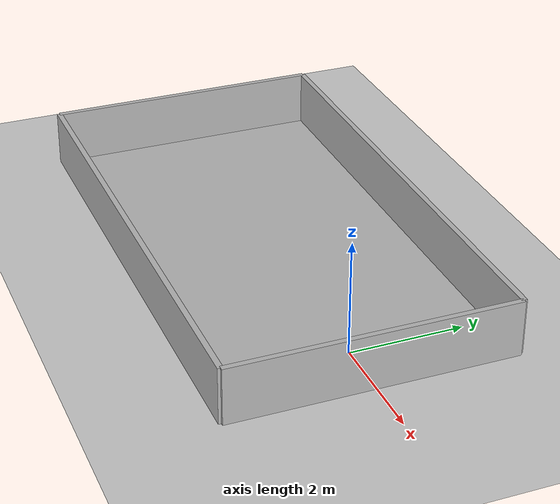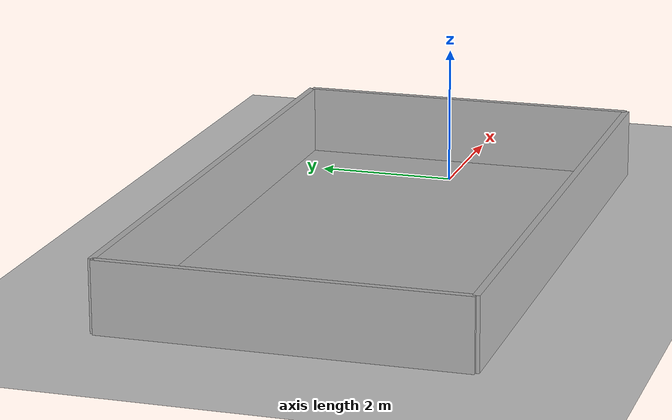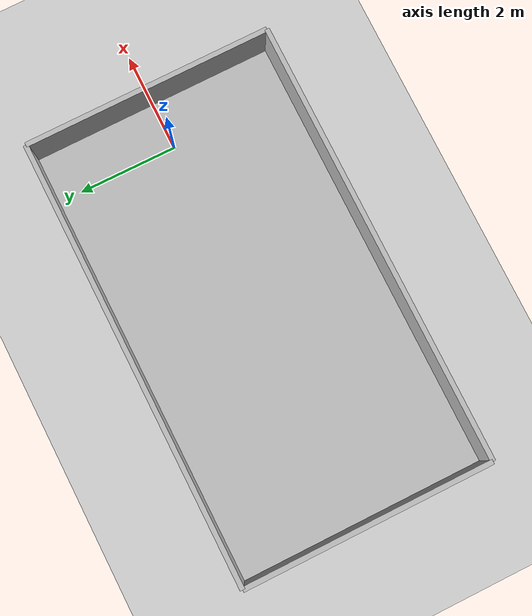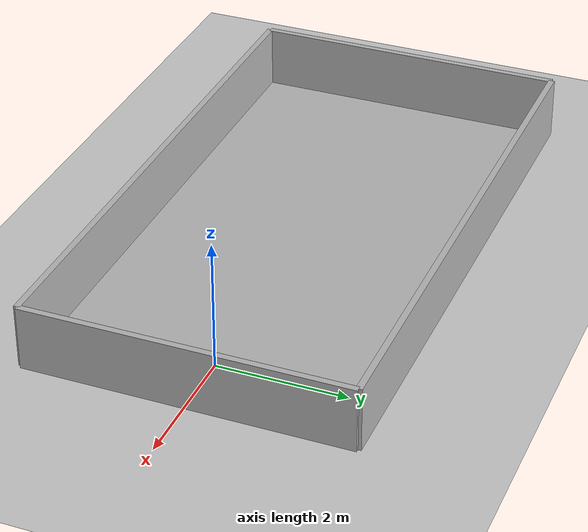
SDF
<?xml version="1.0"?>
<sdf version="1.6">
  <world name="rectangle_world">
    <include>
      <uri>model://sun</uri>
    </include>

    <include>
      <uri>model://ground_plane</uri>
    </include>

    <gui fullscreen='0'>
      <camera name='user_camera'>
        <pose frame=''>0 0 10 0 1.57 0</pose>
        <view_controller>orbit</view_controller>
        <projection_type>perspective</projection_type>
      </camera>
    </gui>

    <physics type="ode">
      <real_time_update_rate>1000.0</real_time_update_rate>
      <max_step_size>0.001</max_step_size>
      <real_time_factor>1</real_time_factor>
      <ode>
        <solver>
          <type>quick</type>
          <iters>150</iters>
          <precon_iters>0</precon_iters>
          <sor>1.400000</sor>
          <use_dynamic_moi_rescaling>1</use_dynamic_moi_rescaling>
        </solver>
        <constraints>
          <cfm>0.00001</cfm>
          <erp>0.2</erp>
          <contact_max_correcting_vel>2000.000000</contact_max_correcting_vel>
          <contact_surface_layer>0.01000</contact_surface_layer>
        </constraints>
      </ode>
    </physics>

    <!-- 5m x 9m 바닥 -->
    <model name="floor">
      <static>true</static>
      <link name="link">
        <collision name="collision">
          <geometry>
            <box>
              <size>9 5 0.01</size>
            </box>
          </geometry>
        </collision>
        <visual name="visual">
          <geometry>
            <box>
              <size>9 5 0.01</size>
            </box>
            <material>
              <ambient>0.7 0.7 0.7 1</ambient>
            </material>
          </geometry>
        </visual>
      </link>
      <pose>-3.5 0 0 0 0 0</pose>
    </model>

    <!-- 앞쪽 벽 -->
    <model name="front_wall">
      <pose>-3.5 2.5 0.5 0 0 0</pose>
      <static>true</static>
      <link name="link">
        <collision name="collision">
          <geometry>
            <box>
              <size>9 0.1 1</size>
            </box>
          </geometry>
        </collision>
        <visual name="visual">
          <geometry>
            <box>
              <size>9 0.1 1</size>
            </box>
          </geometry>
        </visual>
      </link>
    </model>

    <!-- 뒤쪽 벽 -->
    <model name="back_wall">
      <pose>-3.5 -2.5 0.5 0 0 0</pose>
      <static>true</static>
      <link name="link">
        <collision name="collision">
          <geometry>
            <box>
              <size>9 0.1 1</size>
            </box>
          </geometry>
        </collision>
        <visual name="visual">
          <geometry>
            <box>
              <size>9 0.1 1</size>
            </box>
          </geometry>
        </visual>
      </link>
    </model>

    <!-- 왼쪽 벽 -->
    <model name="left_wall">
      <pose>-8 -0.0 0.5 0 0 0</pose>
      <static>true</static>
      <link name="link">
        <collision name="collision">
          <geometry>
            <box>
              <size>0.1 5 1</size>
            </box>
          </geometry>
        </collision>
        <visual name="visual">
          <geometry>
            <box>
              <size>0.1 5 1</size>
            </box>
          </geometry>
        </visual>
      </link>
    </model>

    <!-- 오른쪽 벽 -->
    <model name="right_wall">
      <pose>1 -0.0 0.5 0 0 0</pose>
      <static>true</static>
      <link name="link">
        <collision name="collision">
          <geometry>
            <box>
              <size>0.1 5 1</size>
            </box>
          </geometry>
        </collision>
        <visual name="visual">
          <geometry>
            <box>
              <size>0.1 5 1</size>
            </box>
          </geometry>
        </visual>
      </link>
    </model>

  </world>
</sdf>
